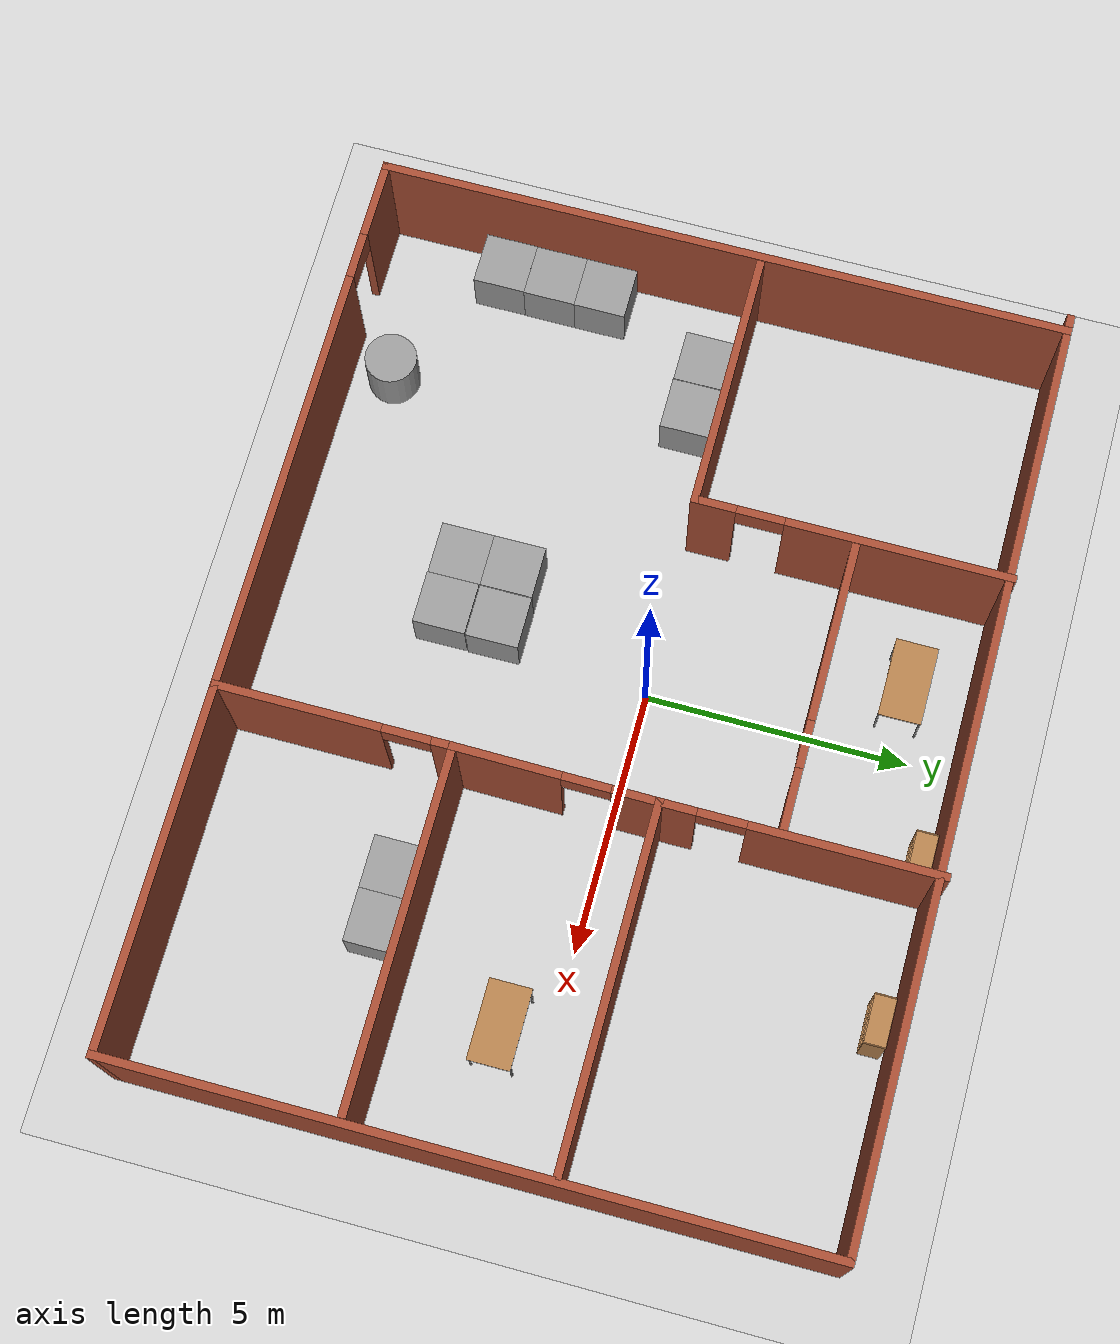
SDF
<sdf version="1.6">
 <world name="default">
  <light name="sun" type="directional">
   <pose>0 0 10 0 -0 0</pose>
   <diffuse>0.8 0.8 0.8 1</diffuse>
   <specular>0.2 0.2 0.2 1</specular>
   <attenuation>
    <range>1000</range>
    <constant>0.9</constant>
    <linear>0.01</linear>
    <quadratic>0.001</quadratic>
   </attenuation>
   <direction>-0.5 0.1 -0.9</direction>
  </light>
  <model name="ground_plane">
   <static>1</static>
   <link name="link">
    <collision name="collision">
     <geometry><plane><normal>0 0 1</normal><size>100 100</size></plane></geometry>
     <surface><friction><ode><mu>100</mu><mu2>50</mu2></ode></friction></surface>
    </collision>
    <visual name="visual">
     <cast_shadows>0</cast_shadows>
     <geometry><plane><normal>0 0 1</normal><size>100 100</size></plane></geometry>
     <material>
      <script><uri>file://media/materials/scripts/gazebo.material</uri><name>Gazebo/Grey</name></script>
     </material>
    </visual>
   </link>
  </model>
  <gravity>0 0 -9.8</gravity>
  <magnetic_field>6e-06 2.3e-05 -4.2e-05</magnetic_field>
  <atmosphere type="adiabatic"/>
  <physics name="default_physics" default="0" type="ode">
   <max_step_size>0.001</max_step_size>
   <real_time_factor>1</real_time_factor>
   <real_time_update_rate>1000</real_time_update_rate>
  </physics>
  <scene><ambient>0.4 0.4 0.4 1</ambient><background>0.7 0.7 0.7 1</background><shadows>1</shadows></scene>
  <spherical_coordinates>
   <surface_model>EARTH_WGS84</surface_model>
   <latitude_deg>0</latitude_deg>
   <longitude_deg>0</longitude_deg>
   <elevation>0</elevation>
   <heading_deg>0</heading_deg>
  </spherical_coordinates>
  <model name="a_a_simulator">
   <pose>0.426375 -0.635753 0 0 -0 0</pose>
   <link name="Wall_11">
    <collision name="Wall_11_Collision">
     <geometry><box><size>5 0.15 2.5</size></box></geometry>
     <pose>0 0 1.25 0 -0 0</pose>
    </collision>
    <visual name="Wall_11_Visual">
     <pose>0 0 1.25 0 -0 0</pose>
     <geometry><box><size>5 0.15 2.5</size></box></geometry>
     <material>
      <script><uri>file://media/materials/scripts/gazebo.material</uri><name>Gazebo/Bricks</name></script>
      <ambient>1 1 1 1</ambient>
     </material>
     <meta><layer>0</layer></meta>
    </visual>
    <pose>-5.96595 0.694875 0 0 -0 0</pose>
   </link>
   <link name="Wall_12">
    <pose>-3.54095 3.61987 0 0 -0 1.5708</pose>
    <visual name="Wall_12_Visual_0">
     <pose>-2.57776 0 1.25 0 -0 0</pose>
     <geometry><box><size>0.844473 0.15 2.5</size></box></geometry>
     <material>
      <script><uri>file://media/materials/scripts/gazebo.material</uri><name>Gazebo/Bricks</name></script>
      <ambient>1 1 1 1</ambient>
     </material>
     <meta><layer>0</layer></meta>
    </visual>
    <collision name="Wall_12_Collision_0">
     <geometry><box><size>0.844473 0.15 2.5</size></box></geometry>
     <pose>-2.57776 0 1.25 0 -0 0</pose>
    </collision>
    <visual name="Wall_12_Visual_1">
     <pose>0.872236 0 1.25 0 -0 0</pose>
     <geometry><box><size>4.25553 0.15 2.5</size></box></geometry>
     <material>
      <script><uri>file://media/materials/scripts/gazebo.material</uri><name>Gazebo/Bricks</name></script>
      <ambient>1 1 1 1</ambient>
     </material>
     <meta><layer>0</layer></meta>
    </visual>
    <collision name="Wall_12_Collision_1">
     <geometry><box><size>4.25553 0.15 2.5</size></box></geometry>
     <pose>0.872236 0 1.25 0 -0 0</pose>
    </collision>
    <visual name="Wall_12_Visual_2">
     <pose>-1.70553 0 2.25 0 -0 0</pose>
     <geometry><box><size>0.9 0.15 0.5</size></box></geometry>
     <material>
      <script><uri>file://media/materials/scripts/gazebo.material</uri><name>Gazebo/Bricks</name></script>
      <ambient>1 1 1 1</ambient>
     </material>
     <meta><layer>0</layer></meta>
    </visual>
    <collision name="Wall_12_Collision_2">
     <geometry><box><size>0.9 0.15 0.5</size></box></geometry>
     <pose>-1.70553 0 2.25 0 -0 0</pose>
    </collision>
   </link>
   <link name="Wall_14">
    <pose>-0.714405 3.69941 0 0 -0 0</pose>
    <visual name="Wall_14_Visual_0">
     <pose>-1.03924 0 1.25 0 -0 0</pose>
     <geometry><box><size>3.42152 0.15 2.5</size></box></geometry>
     <material>
      <script><uri>file://media/materials/scripts/gazebo.material</uri><name>Gazebo/Bricks</name></script>
      <ambient>1 1 1 1</ambient>
     </material>
     <meta><layer>0</layer></meta>
    </visual>
    <collision name="Wall_14_Collision_0">
     <geometry><box><size>3.42152 0.15 2.5</size></box></geometry>
     <pose>-1.03924 0 1.25 0 -0 0</pose>
    </collision>
    <visual name="Wall_14_Visual_1">
     <pose>2.16076 0 1.25 0 -0 0</pose>
     <geometry><box><size>1.17848 0.15 2.5</size></box></geometry>
     <material>
      <script><uri>file://media/materials/scripts/gazebo.material</uri><name>Gazebo/Bricks</name></script>
      <ambient>1 1 1 1</ambient>
     </material>
     <meta><layer>0</layer></meta>
    </visual>
    <collision name="Wall_14_Collision_1">
     <geometry><box><size>1.17848 0.15 2.5</size></box></geometry>
     <pose>2.16076 0 1.25 0 -0 0</pose>
    </collision>
    <visual name="Wall_14_Visual_2">
     <pose>1.12152 0 2.25 0 -0 0</pose>
     <geometry><box><size>0.9 0.15 0.5</size></box></geometry>
     <material>
      <script><uri>file://media/materials/scripts/gazebo.material</uri><name>Gazebo/Bricks</name></script>
      <ambient>1 1 1 1</ambient>
     </material>
     <meta><layer>0</layer></meta>
    </visual>
    <collision name="Wall_14_Collision_2">
     <geometry><box><size>0.9 0.15 0.5</size></box></geometry>
     <pose>1.12152 0 2.25 0 -0 0</pose>
    </collision>
   </link>
   <link name="Wall_30">
    <collision name="Wall_30_Collision">
     <geometry><box><size>6.75 0.15 2.5</size></box></geometry>
     <pose>0 0 1.25 0 -0 0</pose>
    </collision>
    <visual name="Wall_30_Visual">
     <pose>0 0 1.25 0 -0 0</pose>
     <geometry><box><size>6.75 0.15 2.5</size></box></geometry>
     <material>
      <script><uri>file://media/materials/scripts/gazebo.material</uri><name>Gazebo/Bricks</name></script>
      <ambient>1 1 1 1</ambient>
     </material>
     <meta><layer>0</layer></meta>
    </visual>
    <pose>5.38241 1.49873 0 0 -0 0</pose>
   </link>
   <link name="Wall_32">
    <pose>2.08241 4.04873 0 0 -0 1.5708</pose>
    <visual name="Wall_32_Visual_0">
     <pose>-2.24995 0 1.25 0 -0 0</pose>
     <geometry><box><size>0.750102 0.15 2.5</size></box></geometry>
     <material>
      <script><uri>file://media/materials/scripts/gazebo.material</uri><name>Gazebo/Bricks</name></script>
      <ambient>1 1 1 1</ambient>
     </material>
     <meta><layer>0</layer></meta>
    </visual>
    <collision name="Wall_32_Collision_0">
     <geometry><box><size>0.750102 0.15 2.5</size></box></geometry>
     <pose>-2.24995 0 1.25 0 -0 0</pose>
    </collision>
    <visual name="Wall_32_Visual_1">
     <pose>0.825051 0 1.25 0 -0 0</pose>
     <geometry><box><size>3.5999 0.15 2.5</size></box></geometry>
     <material>
      <script><uri>file://media/materials/scripts/gazebo.material</uri><name>Gazebo/Bricks</name></script>
      <ambient>1 1 1 1</ambient>
     </material>
     <meta><layer>0</layer></meta>
    </visual>
    <collision name="Wall_32_Collision_1">
     <geometry><box><size>3.5999 0.15 2.5</size></box></geometry>
     <pose>0.825051 0 1.25 0 -0 0</pose>
    </collision>
    <visual name="Wall_32_Visual_2">
     <pose>-1.4249 0 2.25 0 -0 0</pose>
     <geometry><box><size>0.9 0.15 0.5</size></box></geometry>
     <material>
      <script><uri>file://media/materials/scripts/gazebo.material</uri><name>Gazebo/Bricks</name></script>
      <ambient>1 1 1 1</ambient>
     </material>
     <meta><layer>0</layer></meta>
    </visual>
    <collision name="Wall_32_Collision_2">
     <geometry><box><size>0.9 0.15 0.5</size></box></geometry>
     <pose>-1.4249 0 2.25 0 -0 0</pose>
    </collision>
   </link>
   <link name="Wall_36">
    <collision name="Wall_36_Collision">
     <geometry><box><size>6.75 0.15 2.5</size></box></geometry>
     <pose>0 0 1.25 0 -0 0</pose>
    </collision>
    <visual name="Wall_36_Visual">
     <pose>0 0 1.25 0 -0 0</pose>
     <geometry><box><size>6.75 0.15 2.5</size></box></geometry>
     <material>
      <script><uri>file://media/materials/scripts/gazebo.material</uri><name>Gazebo/Bricks</name></script>
      <ambient>1 1 1 1</ambient>
     </material>
     <meta><layer>0</layer></meta>
    </visual>
    <pose>5.34585 -2.23675 0 0 -0 3.14159</pose>
   </link>
   <link name="Wall_37">
    <pose>2.04585 -4.41175 0 0 -0 -1.5708</pose>
    <visual name="Wall_37_Visual_0">
     <pose>-2.01536 0 1.25 0 -0 0</pose>
     <geometry><box><size>0.46929 0.15 2.5</size></box></geometry>
     <material>
      <script><uri>file://media/materials/scripts/gazebo.material</uri><name>Gazebo/Bricks</name></script>
      <ambient>1 1 1 1</ambient>
     </material>
     <meta><layer>0</layer></meta>
    </visual>
    <collision name="Wall_37_Collision_0">
     <geometry><box><size>0.46929 0.15 2.5</size></box></geometry>
     <pose>-2.01536 0 1.25 0 -0 0</pose>
    </collision>
    <visual name="Wall_37_Visual_1">
     <pose>0.684645 0 1.25 0 -0 0</pose>
     <geometry><box><size>3.13071 0.15 2.5</size></box></geometry>
     <material>
      <script><uri>file://media/materials/scripts/gazebo.material</uri><name>Gazebo/Bricks</name></script>
      <ambient>1 1 1 1</ambient>
     </material>
     <meta><layer>0</layer></meta>
    </visual>
    <collision name="Wall_37_Collision_1">
     <geometry><box><size>3.13071 0.15 2.5</size></box></geometry>
     <pose>0.684645 0 1.25 0 -0 0</pose>
    </collision>
    <visual name="Wall_37_Visual_2">
     <pose>-1.33071 0 2.25 0 -0 0</pose>
     <geometry><box><size>0.9 0.15 0.5</size></box></geometry>
     <material>
      <script><uri>file://media/materials/scripts/gazebo.material</uri><name>Gazebo/Bricks</name></script>
      <ambient>1 1 1 1</ambient>
     </material>
     <meta><layer>0</layer></meta>
    </visual>
    <collision name="Wall_37_Collision_2">
     <geometry><box><size>0.9 0.15 0.5</size></box></geometry>
     <pose>-1.33071 0 2.25 0 -0 0</pose>
    </collision>
   </link>
   <link name="Wall_39">
    <pose>2.06413 -0.369005 0 0 -0 -1.58058</pose>
    <visual name="Wall_39_Visual_0">
     <pose>-1.47656 0 1.25 0 -0 0</pose>
     <geometry><box><size>0.932542 0.15 2.5</size></box></geometry>
     <material>
      <script><uri>file://media/materials/scripts/gazebo.material</uri><name>Gazebo/Bricks</name></script>
      <ambient>1 1 1 1</ambient>
     </material>
     <meta><layer>0</layer></meta>
    </visual>
    <collision name="Wall_39_Collision_0">
     <geometry><box><size>0.932542 0.15 2.5</size></box></geometry>
     <pose>-1.47656 0 1.25 0 -0 0</pose>
    </collision>
    <visual name="Wall_39_Visual_1">
     <pose>0.916271 0 1.25 0 -0 0</pose>
     <geometry><box><size>2.05312 0.15 2.5</size></box></geometry>
     <material>
      <script><uri>file://media/materials/scripts/gazebo.material</uri><name>Gazebo/Bricks</name></script>
      <ambient>1 1 1 1</ambient>
     </material>
     <meta><layer>0</layer></meta>
    </visual>
    <collision name="Wall_39_Collision_1">
     <geometry><box><size>2.05312 0.15 2.5</size></box></geometry>
     <pose>0.916271 0 1.25 0 -0 0</pose>
    </collision>
    <visual name="Wall_39_Visual_2">
     <pose>-0.560288 0 2.25 0 -0 0</pose>
     <geometry><box><size>0.9 0.15 0.5</size></box></geometry>
     <material>
      <script><uri>file://media/materials/scripts/gazebo.material</uri><name>Gazebo/Bricks</name></script>
      <ambient>1 1 1 1</ambient>
     </material>
     <meta><layer>0</layer></meta>
    </visual>
    <collision name="Wall_39_Collision_2">
     <geometry><box><size>0.9 0.15 0.5</size></box></geometry>
     <pose>-0.560288 0 2.25 0 -0 0</pose>
    </collision>
   </link>
   <link name="Wall_5">
    <collision name="Wall_5_Collision">
     <geometry><box><size>17.75 0.15 2.5</size></box></geometry>
     <pose>0 0 1.25 0 -0 0</pose>
    </collision>
    <visual name="Wall_5_Visual">
     <pose>0 0 1.25 0 -0 0</pose>
     <geometry><box><size>17.75 0.15 2.5</size></box></geometry>
     <material>
      <script><uri>file://media/materials/scripts/gazebo.material</uri><name>Gazebo/Bricks</name></script>
      <ambient>1 1 1 1</ambient>
     </material>
     <meta><layer>0</layer></meta>
    </visual>
    <pose>-0 6.50127 0 0 -0 0</pose>
   </link>
   <link name="Wall_6">
    <collision name="Wall_6_Collision">
     <geometry><box><size>13.25 0.15 2.5</size></box></geometry>
     <pose>0 0 1.25 0 -0 0</pose>
    </collision>
    <visual name="Wall_6_Visual">
     <pose>0 0 1.25 0 -0 0</pose>
     <geometry><box><size>13.25 0.15 2.5</size></box></geometry>
     <material>
      <script><uri>file://media/materials/scripts/gazebo.material</uri><name>Gazebo/Bricks</name></script>
      <ambient>1 1 1 1</ambient>
     </material>
     <meta><layer>0</layer></meta>
    </visual>
    <pose>8.8 -0.048734 0 0 -0 -1.5708</pose>
   </link>
   <link name="Wall_7">
    <pose>0.125 -6.59873 0 0 -0 3.14159</pose>
    <visual name="Wall_7_Visual_0">
     <pose>-1.22663 0 1.25 0 -0 0</pose>
     <geometry><box><size>15.0467 0.15 2.5</size></box></geometry>
     <material>
      <script><uri>file://media/materials/scripts/gazebo.material</uri><name>Gazebo/Bricks</name></script>
      <ambient>1 1 1 1</ambient>
     </material>
     <meta><layer>0</layer></meta>
    </visual>
    <collision name="Wall_7_Collision_0">
     <geometry><box><size>15.0467 0.15 2.5</size></box></geometry>
     <pose>-1.22663 0 1.25 0 -0 0</pose>
    </collision>
    <visual name="Wall_7_Visual_1">
     <pose>7.97337 0 1.25 0 -0 0</pose>
     <geometry><box><size>1.55327 0.15 2.5</size></box></geometry>
     <material>
      <script><uri>file://media/materials/scripts/gazebo.material</uri><name>Gazebo/Bricks</name></script>
      <ambient>1 1 1 1</ambient>
     </material>
     <meta><layer>0</layer></meta>
    </visual>
    <collision name="Wall_7_Collision_1">
     <geometry><box><size>1.55327 0.15 2.5</size></box></geometry>
     <pose>7.97337 0 1.25 0 -0 0</pose>
    </collision>
    <visual name="Wall_7_Visual_2">
     <pose>6.74673 0 2.25 0 -0 0</pose>
     <geometry><box><size>0.9 0.15 0.5</size></box></geometry>
     <material>
      <script><uri>file://media/materials/scripts/gazebo.material</uri><name>Gazebo/Bricks</name></script>
      <ambient>1 1 1 1</ambient>
     </material>
     <meta><layer>0</layer></meta>
    </visual>
    <collision name="Wall_7_Collision_2">
     <geometry><box><size>0.9 0.15 0.5</size></box></geometry>
     <pose>6.74673 0 2.25 0 -0 0</pose>
    </collision>
   </link>
   <link name="Wall_8">
    <collision name="Wall_8_Collision">
     <geometry><box><size>13.25 0.15 2.5</size></box></geometry>
     <pose>0 0 1.25 0 -0 0</pose>
    </collision>
    <visual name="Wall_8_Visual">
     <pose>0 0 1.25 0 -0 0</pose>
     <geometry><box><size>13.25 0.15 2.5</size></box></geometry>
     <material>
      <script><uri>file://media/materials/scripts/gazebo.material</uri><name>Gazebo/Bricks</name></script>
      <ambient>1 1 1 1</ambient>
     </material>
     <meta><layer>0</layer></meta>
    </visual>
    <pose>-8.55 -0.048734 0 0 -0 1.5708</pose>
   </link>
   <static>1</static>
  </model>
  <model name="unit_box">
   <pose>-6.48301 -0.544624 0.499995 -1e-05 -0 -0</pose>
   <link name="link">
    <inertial>
     <mass>1</mass>
     <inertia>
      <ixx>0.166667</ixx>
      <ixy>0</ixy>
      <ixz>0</ixz>
      <iyy>0.166667</iyy>
      <iyz>0</iyz>
      <izz>0.166667</izz>
     </inertia>
    </inertial>
    <collision name="collision"><geometry><box><size>1 1 1</size></box></geometry></collision>
    <visual name="visual">
     <geometry><box><size>1 1 1</size></box></geometry>
     <material>
      <script><name>Gazebo/Grey</name><uri>file://media/materials/scripts/gazebo.material</uri></script>
     </material>
    </visual>
   </link>
  </model>
  <model name="unit_box_0">
   <pose>-5.47445 -0.551464 0.499995 0 1e-05 0</pose>
   <link name="link">
    <inertial>
     <mass>1</mass>
     <inertia>
      <ixx>0.166667</ixx>
      <ixy>0</ixy>
      <ixz>0</ixz>
      <iyy>0.166667</iyy>
      <iyz>0</iyz>
      <izz>0.166667</izz>
     </inertia>
    </inertial>
    <collision name="collision"><geometry><box><size>1 1 1</size></box></geometry></collision>
    <visual name="visual">
     <geometry><box><size>1 1 1</size></box></geometry>
     <material>
      <script><name>Gazebo/Grey</name><uri>file://media/materials/scripts/gazebo.material</uri></script>
     </material>
    </visual>
   </link>
  </model>
  <model name="unit_box_1">
   <pose>-7.47955 -2.78133 0.5 0 -0 1.6e-05</pose>
   <link name="link">
    <inertial>
     <mass>1</mass>
     <inertia>
      <ixx>0.166667</ixx>
      <ixy>0</ixy>
      <ixz>0</ixz>
      <iyy>0.166667</iyy>
      <iyz>0</iyz>
      <izz>0.166667</izz>
     </inertia>
    </inertial>
    <collision name="collision"><geometry><box><size>1 1 1</size></box></geometry></collision>
    <visual name="visual">
     <geometry><box><size>1 1 1</size></box></geometry>
     <material>
      <script><name>Gazebo/Grey</name><uri>file://media/materials/scripts/gazebo.material</uri></script>
     </material>
    </visual>
   </link>
  </model>
  <model name="unit_box_2">
   <pose>-7.48254 -3.78137 0.5 -0 -0 -3.7e-05</pose>
   <link name="link">
    <inertial>
     <mass>1</mass>
     <inertia>
      <ixx>0.166667</ixx>
      <ixy>0</ixy>
      <ixz>0</ixz>
      <iyy>0.166667</iyy>
      <iyz>0</iyz>
      <izz>0.166667</izz>
     </inertia>
    </inertial>
    <collision name="collision"><geometry><box><size>1 1 1</size></box></geometry></collision>
    <visual name="visual">
     <geometry><box><size>1 1 1</size></box></geometry>
     <material>
      <script><name>Gazebo/Grey</name><uri>file://media/materials/scripts/gazebo.material</uri></script>
     </material>
    </visual>
   </link>
  </model>
  <model name="unit_box_3">
   <pose>-7.48942 -4.78147 0.499995 1e-05 -0 -0.000152</pose>
   <link name="link">
    <inertial>
     <mass>1</mass>
     <inertia>
      <ixx>0.166667</ixx>
      <ixy>0</ixy>
      <ixz>0</ixz>
      <iyy>0.166667</iyy>
      <iyz>0</iyz>
      <izz>0.166667</izz>
     </inertia>
    </inertial>
    <collision name="collision"><geometry><box><size>1 1 1</size></box></geometry></collision>
    <visual name="visual">
     <geometry><box><size>1 1 1</size></box></geometry>
     <material>
      <script><name>Gazebo/Grey</name><uri>file://media/materials/scripts/gazebo.material</uri></script>
     </material>
    </visual>
   </link>
  </model>
  <model name="unit_cylinder">
   <pose>-4.99456 -6.35217 0.499993 -3e-06 2e-06 0</pose>
   <link name="link">
    <inertial>
     <mass>1</mass>
     <inertia><ixx>0.145833</ixx><ixy>0</ixy><ixz>0</ixz><iyy>0.145833</iyy><iyz>0</iyz><izz>0.125</izz></inertia>
    </inertial>
    <collision name="collision">
     <geometry><cylinder><radius>0.5</radius><length>1</length></cylinder></geometry>
    </collision>
    <visual name="visual">
     <geometry><cylinder><radius>0.5</radius><length>1</length></cylinder></geometry>
     <material>
      <script><name>Gazebo/Grey</name><uri>file://media/materials/scripts/gazebo.material</uri></script>
     </material>
    </visual>
   </link>
  </model>
  <model name="unit_box_4">
   <pose>4.51973 -3.47008 0.499995 0 1e-05 -3e-06</pose>
   <link name="link">
    <inertial>
     <mass>1</mass>
     <inertia>
      <ixx>0.166667</ixx>
      <ixy>0</ixy>
      <ixz>0</ixz>
      <iyy>0.166667</iyy>
      <iyz>0</iyz>
      <izz>0.166667</izz>
     </inertia>
    </inertial>
    <collision name="collision"><geometry><box><size>1 1 1</size></box></geometry></collision>
    <visual name="visual">
     <geometry><box><size>1 1 1</size></box></geometry>
     <material>
      <script><name>Gazebo/Grey</name><uri>file://media/materials/scripts/gazebo.material</uri></script>
     </material>
    </visual>
   </link>
  </model>
  <model name="unit_box_5">
   <pose>5.51972 -3.47087 0.499995 0 -1e-05 -3e-06</pose>
   <link name="link">
    <inertial>
     <mass>1</mass>
     <inertia>
      <ixx>0.166667</ixx>
      <ixy>0</ixy>
      <ixz>0</ixz>
      <iyy>0.166667</iyy>
      <iyz>0</iyz>
      <izz>0.166667</izz>
     </inertia>
    </inertial>
    <collision name="collision"><geometry><box><size>1 1 1</size></box></geometry></collision>
    <visual name="visual">
     <geometry><box><size>1 1 1</size></box></geometry>
     <material>
      <script><name>Gazebo/Grey</name><uri>file://media/materials/scripts/gazebo.material</uri></script>
     </material>
    </visual>
   </link>
  </model>
  <model name="table">
   <static>1</static>
   <link name="link">
    <collision name="surface">
     <pose>0 0 1 0 -0 0</pose>
     <geometry><box><size>1.5 0.8 0.03</size></box></geometry>
     <surface><friction><ode><mu>0.6</mu><mu2>0.6</mu2></ode></friction></surface>
    </collision>
    <visual name="visual1">
     <pose>0 0 1 0 -0 0</pose>
     <geometry><box><size>1.5 0.8 0.03</size></box></geometry>
     <material>
      <script><uri>file://media/materials/scripts/gazebo.material</uri><name>Gazebo/Wood</name></script>
     </material>
    </visual>
    <collision name="front_left_leg">
     <pose>0.68 0.38 0.5 0 -0 0</pose>
     <geometry><cylinder><radius>0.02</radius><length>1</length></cylinder></geometry>
    </collision>
    <visual name="front_left_leg">
     <pose>0.68 0.38 0.5 0 -0 0</pose>
     <geometry><cylinder><radius>0.02</radius><length>1</length></cylinder></geometry>
     <material>
      <script><uri>file://media/materials/scripts/gazebo.material</uri><name>Gazebo/Grey</name></script>
     </material>
    </visual>
    <collision name="front_right_leg">
     <pose>0.68 -0.38 0.5 0 -0 0</pose>
     <geometry><cylinder><radius>0.02</radius><length>1</length></cylinder></geometry>
    </collision>
    <visual name="front_right_leg">
     <pose>0.68 -0.38 0.5 0 -0 0</pose>
     <geometry><cylinder><radius>0.02</radius><length>1</length></cylinder></geometry>
     <material>
      <script><uri>file://media/materials/scripts/gazebo.material</uri><name>Gazebo/Grey</name></script>
     </material>
    </visual>
    <collision name="back_right_leg">
     <pose>-0.68 -0.38 0.5 0 -0 0</pose>
     <geometry><cylinder><radius>0.02</radius><length>1</length></cylinder></geometry>
    </collision>
    <visual name="back_right_leg">
     <pose>-0.68 -0.38 0.5 0 -0 0</pose>
     <geometry><cylinder><radius>0.02</radius><length>1</length></cylinder></geometry>
     <material>
      <script><uri>file://media/materials/scripts/gazebo.material</uri><name>Gazebo/Grey</name></script>
     </material>
    </visual>
    <collision name="back_left_leg">
     <pose>-0.68 0.38 0.5 0 -0 0</pose>
     <geometry><cylinder><radius>0.02</radius><length>1</length></cylinder></geometry>
    </collision>
    <visual name="back_left_leg">
     <pose>-0.68 0.38 0.5 0 -0 0</pose>
     <geometry><cylinder><radius>0.02</radius><length>1</length></cylinder></geometry>
     <material>
      <script><uri>file://media/materials/scripts/gazebo.material</uri><name>Gazebo/Grey</name></script>
     </material>
    </visual>
   </link>
   <pose>6.72883 -0.877565 0 0 -0 0</pose>
  </model>
  <model name="table_0">
   <static>1</static>
   <link name="link">
    <collision name="surface">
     <pose>0 0 1 0 -0 0</pose>
     <geometry><box><size>1.5 0.8 0.03</size></box></geometry>
     <surface><friction><ode><mu>0.6</mu><mu2>0.6</mu2></ode></friction></surface>
    </collision>
    <visual name="visual1">
     <pose>0 0 1 0 -0 0</pose>
     <geometry><box><size>1.5 0.8 0.03</size></box></geometry>
     <material>
      <script><uri>file://media/materials/scripts/gazebo.material</uri><name>Gazebo/Wood</name></script>
     </material>
    </visual>
    <collision name="front_left_leg">
     <pose>0.68 0.38 0.5 0 -0 0</pose>
     <geometry><cylinder><radius>0.02</radius><length>1</length></cylinder></geometry>
    </collision>
    <visual name="front_left_leg">
     <pose>0.68 0.38 0.5 0 -0 0</pose>
     <geometry><cylinder><radius>0.02</radius><length>1</length></cylinder></geometry>
     <material>
      <script><uri>file://media/materials/scripts/gazebo.material</uri><name>Gazebo/Grey</name></script>
     </material>
    </visual>
    <collision name="front_right_leg">
     <pose>0.68 -0.38 0.5 0 -0 0</pose>
     <geometry><cylinder><radius>0.02</radius><length>1</length></cylinder></geometry>
    </collision>
    <visual name="front_right_leg">
     <pose>0.68 -0.38 0.5 0 -0 0</pose>
     <geometry><cylinder><radius>0.02</radius><length>1</length></cylinder></geometry>
     <material>
      <script><uri>file://media/materials/scripts/gazebo.material</uri><name>Gazebo/Grey</name></script>
     </material>
    </visual>
    <collision name="back_right_leg">
     <pose>-0.68 -0.38 0.5 0 -0 0</pose>
     <geometry><cylinder><radius>0.02</radius><length>1</length></cylinder></geometry>
    </collision>
    <visual name="back_right_leg">
     <pose>-0.68 -0.38 0.5 0 -0 0</pose>
     <geometry><cylinder><radius>0.02</radius><length>1</length></cylinder></geometry>
     <material>
      <script><uri>file://media/materials/scripts/gazebo.material</uri><name>Gazebo/Grey</name></script>
     </material>
    </visual>
    <collision name="back_left_leg">
     <pose>-0.68 0.38 0.5 0 -0 0</pose>
     <geometry><cylinder><radius>0.02</radius><length>1</length></cylinder></geometry>
    </collision>
    <visual name="back_left_leg">
     <pose>-0.68 0.38 0.5 0 -0 0</pose>
     <geometry><cylinder><radius>0.02</radius><length>1</length></cylinder></geometry>
     <material>
      <script><uri>file://media/materials/scripts/gazebo.material</uri><name>Gazebo/Grey</name></script>
     </material>
    </visual>
   </link>
   <pose>-1.25137 4.61698 0 0 -0 0</pose>
  </model>
  <model name="bookshelf">
   <static>1</static>
   <link name="link">
    <inertial><mass>1</mass></inertial>
    <collision name="back">
     <pose>0 0.005 0.6 0 -0 0</pose>
     <geometry><box><size>0.9 0.01 1.2</size></box></geometry>
    </collision>
    <visual name="visual1">
     <pose>0 0.005 0.6 0 -0 0</pose>
     <geometry><box><size>0.9 0.01 1.2</size></box></geometry>
     <material>
      <script><uri>file://media/materials/scripts/gazebo.material</uri><name>Gazebo/Wood</name></script>
     </material>
    </visual>
    <collision name="left_side">
     <pose>0.45 -0.195 0.6 0 -0 0</pose>
     <geometry><box><size>0.02 0.4 1.2</size></box></geometry>
    </collision>
    <visual name="visual2">
     <pose>0.45 -0.195 0.6 0 -0 0</pose>
     <geometry><box><size>0.02 0.4 1.2</size></box></geometry>
     <material>
      <script><uri>file://media/materials/scripts/gazebo.material</uri><name>Gazebo/Wood</name></script>
     </material>
    </visual>
    <collision name="right_side">
     <pose>-0.45 -0.195 0.6 0 -0 0</pose>
     <geometry><box><size>0.02 0.4 1.2</size></box></geometry>
    </collision>
    <visual name="visual3">
     <pose>-0.45 -0.195 0.6 0 -0 0</pose>
     <geometry><box><size>0.02 0.4 1.2</size></box></geometry>
     <material>
      <script><uri>file://media/materials/scripts/gazebo.material</uri><name>Gazebo/Wood</name></script>
     </material>
    </visual>
    <collision name="bottom">
     <pose>0 -0.195 0.03 0 -0 0</pose>
     <geometry><box><size>0.88 0.4 0.06</size></box></geometry>
    </collision>
    <visual name="visual4">
     <pose>0 -0.195 0.03 0 -0 0</pose>
     <geometry><box><size>0.88 0.4 0.06</size></box></geometry>
     <material>
      <script><uri>file://media/materials/scripts/gazebo.material</uri><name>Gazebo/Wood</name></script>
     </material>
    </visual>
    <collision name="top">
     <pose>0 -0.195 1.19 0 -0 0</pose>
     <geometry><box><size>0.88 0.4 0.02</size></box></geometry>
    </collision>
    <visual name="visual5">
     <pose>0 -0.195 1.19 0 -0 0</pose>
     <geometry><box><size>0.88 0.4 0.02</size></box></geometry>
     <material>
      <script><uri>file://media/materials/scripts/gazebo.material</uri><name>Gazebo/Wood</name></script>
     </material>
    </visual>
    <collision name="low_shelf">
     <pose>0 -0.195 0.43 0 -0 0</pose>
     <geometry><box><size>0.88 0.4 0.02</size></box></geometry>
    </collision>
    <visual name="visual6">
     <pose>0 -0.195 0.43 0 -0 0</pose>
     <geometry><box><size>0.88 0.4 0.02</size></box></geometry>
     <material>
      <script><uri>file://media/materials/scripts/gazebo.material</uri><name>Gazebo/Wood</name></script>
     </material>
    </visual>
    <collision name="high_shelf">
     <pose>0 -0.195 0.8 0 -0 0</pose>
     <geometry><box><size>0.88 0.4 0.02</size></box></geometry>
    </collision>
    <visual name="visual7">
     <pose>0 -0.195 0.8 0 -0 0</pose>
     <geometry><box><size>0.88 0.4 0.02</size></box></geometry>
     <material>
      <script><uri>file://media/materials/scripts/gazebo.material</uri><name>Gazebo/Wood</name></script>
     </material>
    </visual>
   </link>
   <pose>1.92868 5.77347 0 0 -0 0</pose>
  </model>
  <model name="unit_box_6">
   <pose>-0.521168 -2.95085 0.499995 -1e-05 0 0.00312</pose>
   <link name="link">
    <inertial>
     <mass>1</mass>
     <inertia>
      <ixx>0.166667</ixx>
      <ixy>0</ixy>
      <ixz>0</ixz>
      <iyy>0.166667</iyy>
      <iyz>0</iyz>
      <izz>0.166667</izz>
     </inertia>
    </inertial>
    <collision name="collision"><geometry><box><size>1 1 1</size></box></geometry></collision>
    <visual name="visual">
     <geometry><box><size>1 1 1</size></box></geometry>
     <material>
      <script><name>Gazebo/Grey</name><uri>file://media/materials/scripts/gazebo.material</uri></script>
     </material>
    </visual>
   </link>
  </model>
  <model name="unit_box_7">
   <pose>-0.529414 -3.96694 0.499995 0 -1e-05 0.003442</pose>
   <link name="link">
    <inertial>
     <mass>1</mass>
     <inertia>
      <ixx>0.166667</ixx>
      <ixy>0</ixy>
      <ixz>0</ixz>
      <iyy>0.166667</iyy>
      <iyz>0</iyz>
      <izz>0.166667</izz>
     </inertia>
    </inertial>
    <collision name="collision"><geometry><box><size>1 1 1</size></box></geometry></collision>
    <visual name="visual">
     <geometry><box><size>1 1 1</size></box></geometry>
     <material>
      <script><name>Gazebo/Grey</name><uri>file://media/materials/scripts/gazebo.material</uri></script>
     </material>
    </visual>
   </link>
  </model>
  <model name="unit_box_8">
   <pose>-1.53115 -2.95923 0.499995 -1e-05 -0 0.003225</pose>
   <link name="link">
    <inertial>
     <mass>1</mass>
     <inertia>
      <ixx>0.166667</ixx>
      <ixy>0</ixy>
      <ixz>0</ixz>
      <iyy>0.166667</iyy>
      <iyz>0</iyz>
      <izz>0.166667</izz>
     </inertia>
    </inertial>
    <collision name="collision"><geometry><box><size>1 1 1</size></box></geometry></collision>
    <visual name="visual">
     <geometry><box><size>1 1 1</size></box></geometry>
     <material>
      <script><name>Gazebo/Grey</name><uri>file://media/materials/scripts/gazebo.material</uri></script>
     </material>
    </visual>
   </link>
  </model>
  <model name="unit_box_9">
   <pose>-1.52952 -3.95938 0.499995 0 1e-05 0.003384</pose>
   <link name="link">
    <inertial>
     <mass>1</mass>
     <inertia>
      <ixx>0.166667</ixx>
      <ixy>0</ixy>
      <ixz>0</ixz>
      <iyy>0.166667</iyy>
      <iyz>0</iyz>
      <izz>0.166667</izz>
     </inertia>
    </inertial>
    <collision name="collision"><geometry><box><size>1 1 1</size></box></geometry></collision>
    <visual name="visual">
     <geometry><box><size>1 1 1</size></box></geometry>
     <material>
      <script><name>Gazebo/Grey</name><uri>file://media/materials/scripts/gazebo.material</uri></script>
     </material>
    </visual>
   </link>
  </model>
  <model name="bookshelf_0">
   <static>1</static>
   <link name="link">
    <inertial><mass>1</mass></inertial>
    <collision name="back">
     <pose>0 0.005 0.6 0 -0 0</pose>
     <geometry><box><size>0.9 0.01 1.2</size></box></geometry>
    </collision>
    <visual name="visual1">
     <pose>0 0.005 0.6 0 -0 0</pose>
     <geometry><box><size>0.9 0.01 1.2</size></box></geometry>
     <material>
      <script><uri>file://media/materials/scripts/gazebo.material</uri><name>Gazebo/Wood</name></script>
     </material>
    </visual>
    <collision name="left_side">
     <pose>0.45 -0.195 0.6 0 -0 0</pose>
     <geometry><box><size>0.02 0.4 1.2</size></box></geometry>
    </collision>
    <visual name="visual2">
     <pose>0.45 -0.195 0.6 0 -0 0</pose>
     <geometry><box><size>0.02 0.4 1.2</size></box></geometry>
     <material>
      <script><uri>file://media/materials/scripts/gazebo.material</uri><name>Gazebo/Wood</name></script>
     </material>
    </visual>
    <collision name="right_side">
     <pose>-0.45 -0.195 0.6 0 -0 0</pose>
     <geometry><box><size>0.02 0.4 1.2</size></box></geometry>
    </collision>
    <visual name="visual3">
     <pose>-0.45 -0.195 0.6 0 -0 0</pose>
     <geometry><box><size>0.02 0.4 1.2</size></box></geometry>
     <material>
      <script><uri>file://media/materials/scripts/gazebo.material</uri><name>Gazebo/Wood</name></script>
     </material>
    </visual>
    <collision name="bottom">
     <pose>0 -0.195 0.03 0 -0 0</pose>
     <geometry><box><size>0.88 0.4 0.06</size></box></geometry>
    </collision>
    <visual name="visual4">
     <pose>0 -0.195 0.03 0 -0 0</pose>
     <geometry><box><size>0.88 0.4 0.06</size></box></geometry>
     <material>
      <script><uri>file://media/materials/scripts/gazebo.material</uri><name>Gazebo/Wood</name></script>
     </material>
    </visual>
    <collision name="top">
     <pose>0 -0.195 1.19 0 -0 0</pose>
     <geometry><box><size>0.88 0.4 0.02</size></box></geometry>
    </collision>
    <visual name="visual5">
     <pose>0 -0.195 1.19 0 -0 0</pose>
     <geometry><box><size>0.88 0.4 0.02</size></box></geometry>
     <material>
      <script><uri>file://media/materials/scripts/gazebo.material</uri><name>Gazebo/Wood</name></script>
     </material>
    </visual>
    <collision name="low_shelf">
     <pose>0 -0.195 0.43 0 -0 0</pose>
     <geometry><box><size>0.88 0.4 0.02</size></box></geometry>
    </collision>
    <visual name="visual6">
     <pose>0 -0.195 0.43 0 -0 0</pose>
     <geometry><box><size>0.88 0.4 0.02</size></box></geometry>
     <material>
      <script><uri>file://media/materials/scripts/gazebo.material</uri><name>Gazebo/Wood</name></script>
     </material>
    </visual>
    <collision name="high_shelf">
     <pose>0 -0.195 0.8 0 -0 0</pose>
     <geometry><box><size>0.88 0.4 0.02</size></box></geometry>
    </collision>
    <visual name="visual7">
     <pose>0 -0.195 0.8 0 -0 0</pose>
     <geometry><box><size>0.88 0.4 0.02</size></box></geometry>
     <material>
      <script><uri>file://media/materials/scripts/gazebo.material</uri><name>Gazebo/Wood</name></script>
     </material>
    </visual>
   </link>
   <pose>4.97314 5.71641 0 0 -0 0</pose>
  </model>
 </world>
</sdf>
